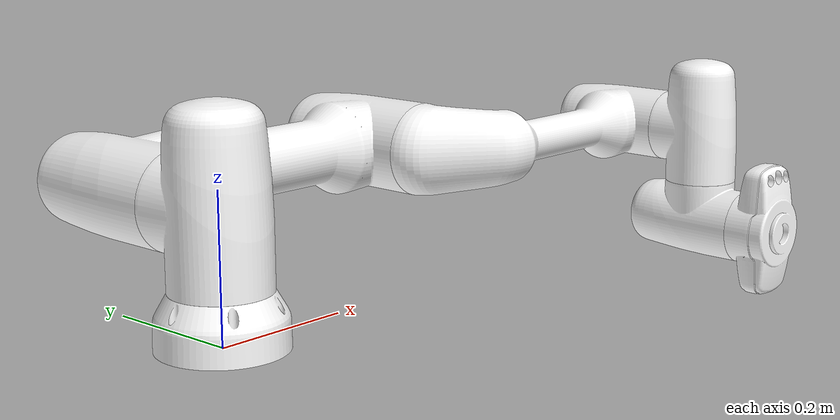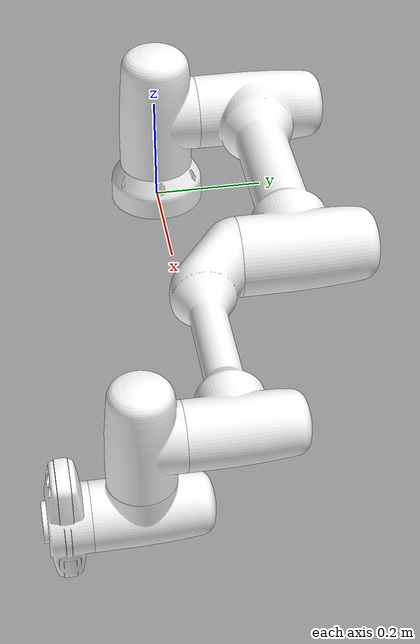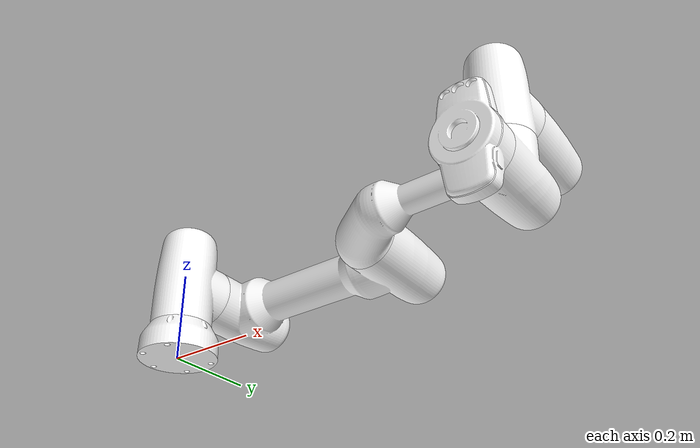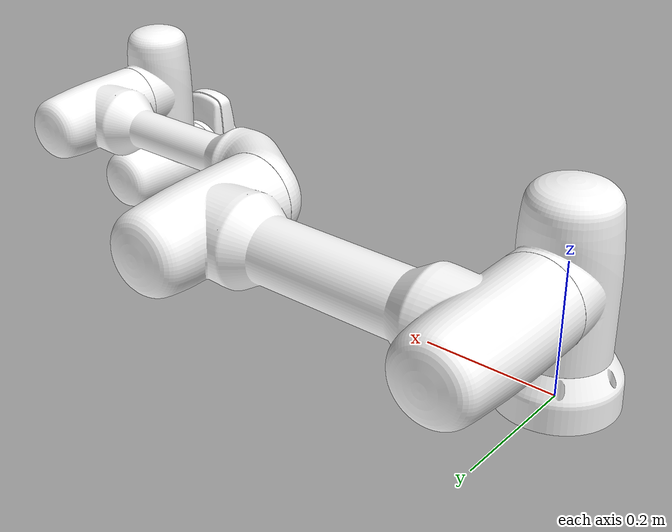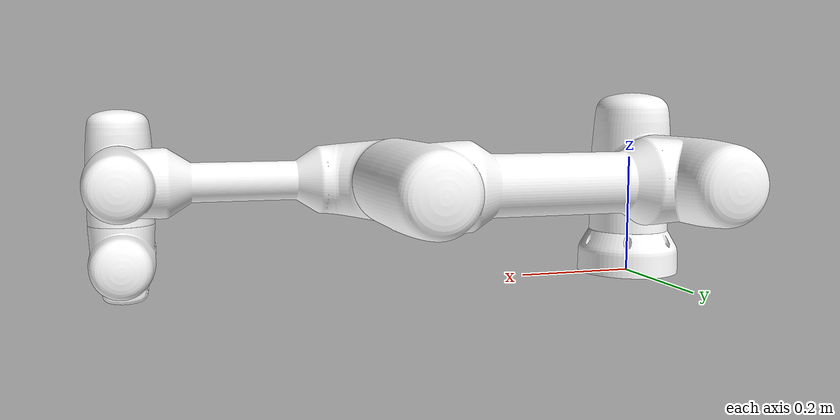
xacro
<?xml version="1.0"?>
<robot name="yu-plus-5-100" xmlns:xacro="https://ros.org/wiki/xacro" >
  <xacro:property name="prefix" value="" />
  <xacro:property name="description_pkg" value="voraus_yu_description" />
  <xacro:property name="simple_collision_model" value="false" />

  <material name="${prefix}white">
    <color rgba="1 1 1 1" />
  </material>

  <link name="${prefix}base_link" />

  <joint name="${prefix}base_link-base" type="fixed">
    <parent link="${prefix}base_link" />
    <child link="${prefix}base" />
    <origin xyz="0 0 0" rpy="0 0 0" />
  </joint>

  <link name="${prefix}base">
    <visual>
      <geometry>
        <mesh filename="package://${description_pkg}/meshes/yu+5-100/visual/base.stl" />
      </geometry>
      <material name="${prefix}white" />
    </visual>
    <xacro:if value="${simple_collision_model}">
      <collision>
        <origin xyz="0 0 0.03657" rpy="0 0 0"/>
        <geometry>
          <cylinder length="0.07314" radius="0.085915"/>
        </geometry>
      </collision>
    </xacro:if>
    <xacro:unless value="${simple_collision_model}">
      <collision>
        <geometry>
          <mesh filename="package://${description_pkg}/meshes/yu+5-100/collision/base.stl" />
        </geometry>
      </collision>
    </xacro:unless>
  </link>

  <joint name="${prefix}joint1" type="revolute">
    <parent link="${prefix}base" />
    <child link="${prefix}shoulder" />
    <axis xyz="0 0 1" />
    <origin xyz="0 0 0" rpy="0 0 0" />
    <limit lower="${radians(-220)}" upper="${radians(220)}" effort="191" velocity="${radians(150)}" />
  </joint>

  <link name="${prefix}shoulder">
    <visual>
      <geometry>
        <mesh filename="package://${description_pkg}/meshes/yu+5-100/visual/shoulder.stl" />
      </geometry>
      <material name="${prefix}white" />
    </visual>
    <xacro:if value="${simple_collision_model}">
      <collision>
        <origin xyz="0 0 0.192495" rpy="0 0 0"/>
        <geometry>
          <cylinder length="0.23871000000000003" radius="0.06712"/>
        </geometry>
      </collision>
    </xacro:if>
    <xacro:unless value="${simple_collision_model}">
      <collision>
        <geometry>
          <mesh filename="package://${description_pkg}/meshes/yu+5-100/collision/shoulder.stl" />
        </geometry>
      </collision>
    </xacro:unless>
    <inertial>
      <origin xyz="0.00002 0.03342 0.1686" rpy="-1.5707963267948966 0 0"/>
      <mass value="5.976" />
      <inertia ixx="0.04641" ixy="0.00002" ixz="-0.00001" iyy="0.03619" iyz="0.00001" izz="0.02264" />
    </inertial>
  </link>

  <joint name="${prefix}joint2" type="revolute">
    <parent link="${prefix}shoulder" />
    <child link="${prefix}upper_arm" />
    <axis xyz="0 0 1" />
    <origin xyz="0 0 0.17495" rpy="1.5707963268 3.141592654 3.141592654" />
    <limit lower="${radians(-220)}" upper="${radians(220)}" effort="191" velocity="${radians(150)}" />
  </joint>

  <link name="${prefix}upper_arm">
    <visual>
      <geometry>
        <mesh filename="package://${description_pkg}/meshes/yu+5-100/visual/upper_arm.stl" />
      </geometry>
      <material name="${prefix}white" />
    </visual>
    <xacro:if value="${simple_collision_model}">
      <collision>
        <origin xyz="0 0 0.16826" rpy="0 0 0"/>
        <geometry>
          <cylinder length="0.29560000000000003" radius="0.06712"/>
        </geometry>
      </collision>
      <collision>
        <origin xyz="0.225035 0 0.1791" rpy="0 1.5707963267948966 0"/>
        <geometry>
          <cylinder length="0.40914999999999996" radius="0.06712"/>
        </geometry>
      </collision>
      <collision>
        <origin xyz="0.45 0 0.19794" rpy="0 0 0"/>
        <geometry>
          <cylinder length="0.23634" radius="0.0625"/>
        </geometry>
      </collision>
    </xacro:if>
    <xacro:unless value="${simple_collision_model}">
      <collision>
        <geometry>
          <mesh filename="package://${description_pkg}/meshes/yu+5-100/collision/upper_arm.stl" />
        </geometry>
      </collision>
    </xacro:unless>
    <inertial>
      <origin xyz="0.21674000000000002 0 0.17427" rpy="0 0 0"/>
      <mass value="9.572" />
      <inertia ixx="0.04223" ixy="0.00006" ixz="0.01707" iyy="0.99637" iyz="0" izz="0.9776" />
    </inertial>
  </link>

  <joint name="${prefix}joint3" type="revolute">
    <parent link="${prefix}upper_arm" />
    <child link="${prefix}forearm" />
    <axis xyz="0 0 1" />
    <origin xyz="0.45 0 0.1791" rpy="0 0 0" />
    <limit lower="${radians(-220)}" upper="${radians(220)}" effort="105" velocity="${radians(180)}" />
  </joint>

  <link name="${prefix}forearm">
    <visual>
      <geometry>
        <mesh filename="package://${description_pkg}/meshes/yu+5-100/visual/forearm.stl" />
      </geometry>
      <material name="${prefix}white" />
    </visual>
    <xacro:if value="${simple_collision_model}">
      <collision>
        <origin xyz="0.04413499999999998 0 -0.152615" rpy="-3.141592653589793 0.9287674082554727 3.141592653589793"/>
        <geometry>
          <cylinder length="0.17796619285695806" radius="0.06712"/>
        </geometry>
      </collision>
      <collision>
        <origin xyz="0.245305 0 -0.1751" rpy="0 1.5707963057214724 0"/>
        <geometry>
          <cylinder length="0.29461000000000004" radius="0.053505"/>
        </geometry>
      </collision>
      <collision>
        <origin xyz="0.4078 0 -0.18383500000000003" rpy="0 0 0"/>
        <geometry>
          <cylinder length="0.23649" radius="0.05356"/>
        </geometry>
      </collision>
    </xacro:if>
    <xacro:unless value="${simple_collision_model}">
      <collision>
        <geometry>
          <mesh filename="package://${description_pkg}/meshes/yu+5-100/collision/forearm.stl" />
        </geometry>
      </collision>
    </xacro:unless>
    <inertial>
      <origin xyz="0.22091 -0.00004 -0.14754" rpy="0 0 0"/>
      <mass value="4.557" />
      <inertia ixx="0.03218" ixy="-0.00002" ixz="-0.07558" iyy="0.44258" iyz="0" izz="0.41879" />
    </inertial>
  </link>

  <joint name="${prefix}joint4" type="revolute">
    <parent link="${prefix}forearm" />
    <child link="${prefix}wrist1" />
    <axis xyz="0 0 1" />
    <origin xyz="0.4078 0 -0.1751" rpy="0 0 0" />
    <limit lower="${radians(-220)}" upper="${radians(220)}" effort="30" velocity="${radians(180)}" />
  </joint>

  <link name="${prefix}wrist1">
    <visual>
      <geometry>
        <mesh filename="package://${description_pkg}/meshes/yu+5-100/visual/wrist1.stl" />
      </geometry>
      <material name="${prefix}white" />
    </visual>
    <xacro:if value="${simple_collision_model}">
      <collision>
        <origin xyz="0 0.008740000000000005 -0.1422" rpy="1.5707963267948966 0 0"/>
        <geometry>
          <cylinder length="0.23648000000000002" radius="0.05356"/>
        </geometry>
      </collision>
    </xacro:if>
    <xacro:unless value="${simple_collision_model}">
      <collision>
        <geometry>
          <mesh filename="package://${description_pkg}/meshes/yu+5-100/collision/wrist1.stl" />
        </geometry>
      </collision>
    </xacro:unless>
    <inertial>
      <origin xyz="-0.00005 -0.0007499999999999986 -0.11831" rpy="1.5707963267948966 0 0"/>
      <mass value="2.588" />
      <inertia ixx="0.01372" ixy="0" ixz="-0.00001" iyy="0.00681" iyz="0.00004" izz="0.01059" />
    </inertial>
  </link>

  <joint name="${prefix}joint5" type="revolute">
    <parent link="${prefix}wrist1" />
    <child link="${prefix}wrist2" />
    <axis xyz="0 0 1" />
    <origin xyz="0 0 -0.1422" rpy="1.5707963268 0 0" />
    <limit lower="${radians(-220)}" upper="${radians(220)}" effort="30" velocity="${radians(180)}" />
  </joint>

  <link name="${prefix}wrist2">
    <visual>
      <geometry>
        <mesh filename="package://${description_pkg}/meshes/yu+5-100/visual/wrist2.stl" />
      </geometry>
      <material name="${prefix}white" />
    </visual>
    <xacro:if value="${simple_collision_model}">
      <collision>
        <origin xyz="0 -0.0206 -0.1422" rpy="-1.5707963267948966 0 0"/>
        <geometry>
          <cylinder length="0.2602" radius="0.05356"/>
        </geometry>
      </collision>
    </xacro:if>
    <xacro:unless value="${simple_collision_model}">
      <collision>
        <geometry>
          <mesh filename="package://${description_pkg}/meshes/yu+5-100/collision/wrist2.stl" />
        </geometry>
      </collision>
    </xacro:unless>
    <inertial>
      <origin xyz="0.00008 0.006749999999999999 -0.12600999999999998" rpy="-1.5707963267948966 0 0"/>
      <mass value="2.588" />
      <inertia ixx="0.01372" ixy="0.00001" ixz="0.00001" iyy="0.00681" iyz="-0.00004" izz="0.01059" />
    </inertial>
  </link>

  <joint name="${prefix}joint6" type="revolute">
    <parent link="${prefix}wrist2" />
    <child link="${prefix}wrist3" />
    <axis xyz="0 0 1" />
    <origin xyz="0 0 -0.1422" rpy="-1.5707963268 0 0" />
    <limit lower="${radians(-220)}" upper="${radians(220)}" effort="30" velocity="${radians(180)}" />
  </joint>

  <link name="${prefix}wrist3">
    <visual>
      <geometry>
        <mesh filename="package://${description_pkg}/meshes/yu+5-100/visual/wrist3.stl" />
      </geometry>
      <material name="${prefix}white" />
    </visual>
    <xacro:if value="${simple_collision_model}">
      <collision>
        <origin xyz="0 0.05450000000000001 -0.11638500000000002" rpy="3.141592653589793 0 0"/>
        <geometry>
          <cylinder length="0.05113" radius="0.049"/>
        </geometry>
      </collision>
      <collision>
        <origin xyz="0 -0.059399999999999994 -0.1123" rpy="3.141592653589793 0 0"/>
        <geometry>
          <cylinder length="0.06096" radius="0.049"/>
        </geometry>
      </collision>
    </xacro:if>
    <xacro:unless value="${simple_collision_model}">
      <collision>
        <geometry>
          <mesh filename="package://${description_pkg}/meshes/yu+5-100/collision/wrist3.stl" />
        </geometry>
      </collision>
    </xacro:unless>
    <inertial>
      <origin xyz="-0.00013 -0.001499999999999991 -0.07686" rpy="3.141592653589793 0 0"/>
      <mass value="1.025" />
      <inertia ixx="0.01057" ixy="-0.00001" ixz="0.00001" iyy="0.00971" iyz="-0.00003" izz="0.00221" />
    </inertial>
  </link>

  <joint name="${prefix}wrist3-flange" type="fixed">
    <parent link="${prefix}wrist3" />
    <child link="${prefix}flange" />
    <origin xyz="0 0 -0.1507" rpy="3.1415926536 0 0" />
  </joint>

  <link name="${prefix}flange" />

</robot>
